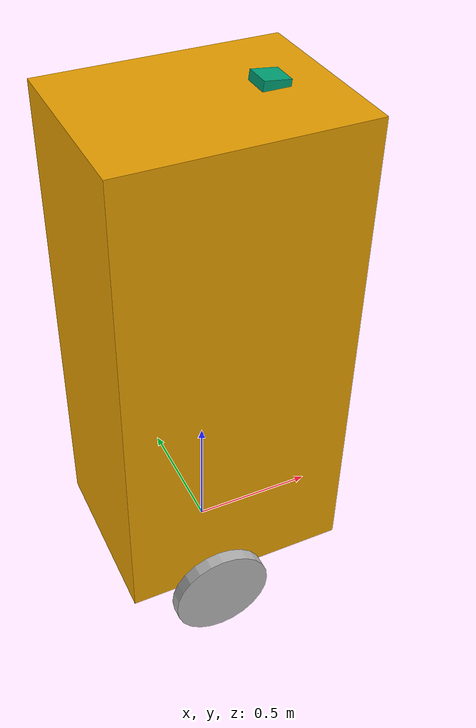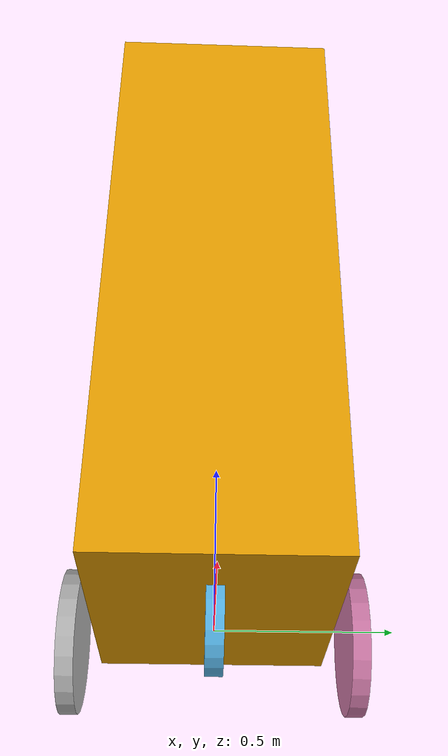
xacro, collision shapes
<?xml version="1.0"?>
<robot xmlns:xacro="http://www.ros.org/wiki/xacro" name="my_robot">

 <!-- Link -->
  <link name="base">
    <collision>
      <origin xyz="0 0 0.99" rpy="0 0 0"/>
      <geometry>
       <box size="0.9 0.7 1.9"/>
      </geometry>
    </collision>

    <visual>
      <origin xyz="0 0 0.99" rpy="0 0 0"/>
      <geometry>
        <box size="0.94 0.78 1.98"/>
      </geometry>
    </visual>
  </link>

  <link name="wheel_center">
    <collision>
      <origin xyz="0 0 0" rpy="0 0 0"/>
      <geometry>
        <cylinder length="0.05" radius="0.15"/>
      </geometry>
    </collision>

    <visual>
      <origin xyz="0 0 0" rpy="0 0 0"/>
      <geometry>
        <cylinder length="0.05" radius="0.15"/>
      </geometry>
    </visual>
  </link>

  <xacro:include filename="$(find gazebo_plugins)/test/multi_robot_scenario/xacro/laser/hokuyo.xacro" />
  <xacro:laser name="laser_horiz" parent="base" xyz="0.2325 0.0001 1.9201" rpy="-0.0012068 0.114646 -0.0015308" meshes="file://$(find gazebo_plugins)/test/multi_robot_scenario/meshes/laser"/>
  <xacro:laser name="laser_vert_bottom" parent="base" xyz="0.3158 -0.0021 0.5100" rpy="3.1355 -1.3045 0.0025" meshes="file://$(find gazebo_plugins)/test/multi_robot_scenario/meshes/laser"/>
  <xacro:laser name="laser_vert_top_right" parent="base" xyz="0.2978 -0.1450 1.8451" rpy="-1.1760 0.6313 -1.9377" meshes="file://$(find gazebo_plugins)/test/multi_robot_scenario/meshes/laser"/>
  <xacro:laser name="laser_vert_top_left" parent="base" xyz="0.2997 0.1531 1.8443" rpy="1.1780 0.6198 1.9560" meshes="file://$(find gazebo_plugins)/test/multi_robot_scenario/meshes/laser"/>

<!-- Joints -->
  <joint name="base_wheel_center" type="continuous">
      <parent link="base"/>
      <child link="wheel_center"/>
      <origin xyz="0.10 0.0 0.0" rpy="-1.57079632679 0 0"/>
      <limit effort="20.0" lower="0.0" upper="2.0" velocity="0.6"/>
      <axis xyz="0 0 1"/>
  </joint>

  <xacro:macro name="xacro_name" params="suffix reflect">
    <link name="wheel_${suffix}">
      <collision>
        <origin xyz="0 0 0" rpy="0 0 0"/>
        <geometry>
          <cylinder length="0.05" radius="0.2"/>
        </geometry>
      </collision>

      <visual>
        <origin xyz="0 0 0" rpy="0 0 0"/>
        <geometry>
          <cylinder length="0.05" radius="0.2"/>
        </geometry>
      </visual>
    </link>

    <joint name="base_wheel_${suffix}" type="continuous">
      <parent link="base"/>
      <child link="wheel_${suffix}"/>
      <origin xyz="-0.10 ${reflect*0.4} 0.0" rpy="-1.57079632679 0 0"/>
      <axis xyz="0 0 1"/>
      <limit effort="20.0" lower="0.0" upper="2.0" velocity="0.6"/>
    </joint>
  </xacro:macro>

  <xacro:xacro_name suffix="left" reflect="1" />
  <xacro:xacro_name suffix="right" reflect="-1" />

</robot>

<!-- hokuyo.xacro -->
<robot xmlns:xacro="http://www.ros.org/wiki/xacro">

<!-- Front Laser -->
<xacro:macro name="laser" params="name parent xyz rpy meshes" >

  <joint name="${parent}_${name}_joint" type="fixed">
      <axis xyz="0 0 1" />
      <origin xyz="${xyz}" rpy="${rpy}"/>
      <parent link="${parent}"/>
      <child link="${name}"/>
    </joint>

    <link name="${name}">
      <collision>
        <origin xyz="0 0 0" rpy="0 0 0"/>
        <geometry>
          <box size="0.1 0.1 0.1"/>
        </geometry>
      </collision>
      <visual>
        <origin xyz="0 0 0" rpy="0 0 0"/>
        <geometry>
          <mesh filename="${meshes}/hokuyo.dae"/>
        </geometry>
      </visual>
      <inertial>
        <mass value="1e-5" />
        <origin xyz="0 0 0" rpy="0 0 0"/>
        <inertia ixx="1e-6" ixy="0" ixz="0" iyy="1e-6" iyz="0" izz="1e-6" />
      </inertial>
    </link>

    <gazebo reference="${name}">
        <sensor name="laser" type="ray">
        <pose>0 0 0 0 0 0</pose>
          <ray>
            <scan>
              <horizontal>
                <!-- The URG-04LX-UG01  has  683 steps with 0.35139 Degree resolution -->
                <resolution>1</resolution>
                <max_angle>2.0944</max_angle> <!-- 120 Degree -->
                <min_angle>-2.0944</min_angle> <!-- -120 Degree -->
                <samples>683</samples>
              </horizontal>
            </scan>
            <range>
              <min>0.08</min>
              <max>5</max>
              <resolution>0.01</resolution>
            </range>
          </ray>

          <plugin name="laser" filename="libgazebo_ros_laser.so" >
            <robotNamespace></robotNamespace>
            <topicName>${name}/scan</topicName>
            <frameName>${name}</frameName>
          </plugin>

          <always_on>1</always_on>
          <update_rate>30</update_rate>
          <visualize>true</visualize>
        </sensor>
    </gazebo>
</xacro:macro>

</robot>
